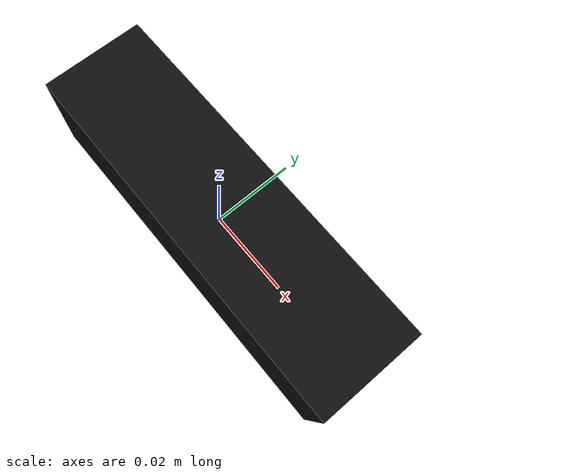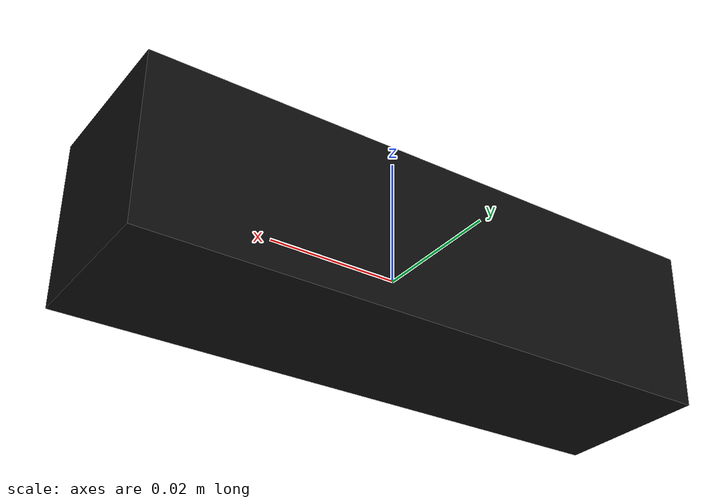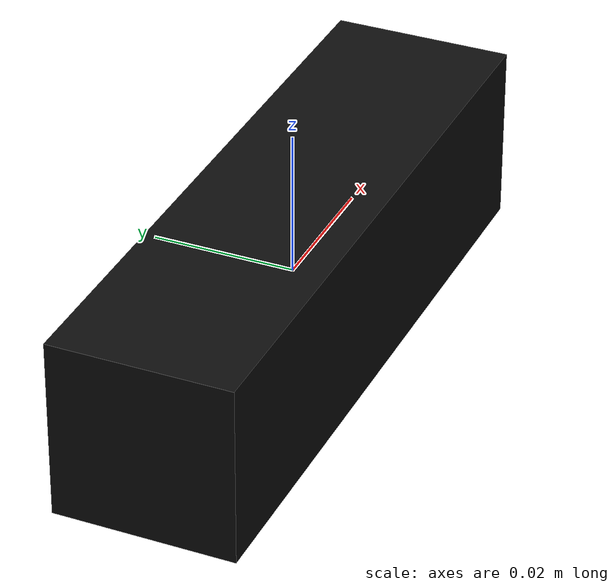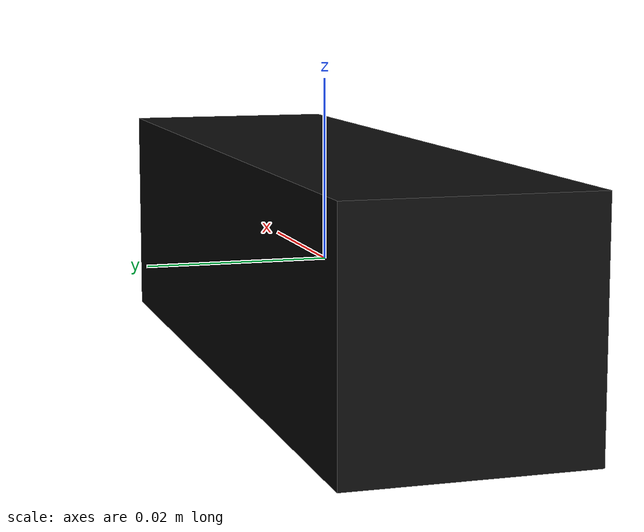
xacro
<?xml version="1.0"?>
<robot name="d435i" xmlns:xacro="http://www.ros.org/wiki/xacro">

  <!-- keep the camera floating at its spawn pose instead of falling -->
  <gazebo>
    <static>true</static>
  </gazebo>

  <link name="camera_link">
    <visual>
      <origin xyz="0 0 0" rpy="0 0 0"/>
      <geometry>
        <box size="0.090 0.025 0.025"/>
      </geometry>
      <material name="black">
        <color rgba="0.05 0.05 0.05 1.0"/>
      </material>
    </visual>
    <collision>
      <geometry>
        <box size="0.090 0.025 0.025"/>
      </geometry>
    </collision>
    <inertial>
      <mass value="0.072"/>
      <inertia ixx="1e-5" ixy="0.0" ixz="0.0" iyy="1e-5" iyz="0.0" izz="1e-5"/>
    </inertial>
  </link>

  <link name="camera_depth_optical_frame"/>

  <joint name="depth_optical_joint" type="fixed">
    <parent link="camera_link"/>
    <child link="camera_depth_optical_frame"/>
    <!-- optical frame: z forward, x right, y down -->
    <origin xyz="0.012 0.0 0.0" rpy="-1.5708 0 -1.5708"/>
  </joint>

  <gazebo reference="camera_link">
    <sensor type="depth" name="d435i_depth">
      <update_rate>30</update_rate>
      <visualize>false</visualize>
      <camera>
        <!-- D435 depth FOV ~ 87 deg -->
        <horizontal_fov>1.518</horizontal_fov>
        <image>
          <width>640</width>
          <height>480</height>
          <format>R8G8B8</format>
        </image>
        <depth_camera/>
        <clip>
          <near>0.1</near>
          <far>10.0</far>
        </clip>
        <noise>
          <type>gaussian</type>
          <mean>0.0</mean>
          <stddev>0.005</stddev>
        </noise>
      </camera>
      <plugin name="d435i_controller" filename="libgazebo_ros_camera.so">
        <ros>
          <namespace>/camera</namespace>
          <!-- align topic names with the real driver -->
          <remapping>rgbd/image_raw:=color/image_raw</remapping>
          <remapping>rgbd/camera_info:=color/camera_info</remapping>
          <remapping>rgbd/depth/image_raw:=depth/image_rect_raw</remapping>
          <remapping>rgbd/depth/camera_info:=depth/camera_info</remapping>
        </ros>
        <camera_name>rgbd</camera_name>
        <frame_name>camera_depth_optical_frame</frame_name>
        <min_depth>0.1</min_depth>
        <max_depth>10.0</max_depth>
      </plugin>
    </sensor>
  </gazebo>

</robot>
